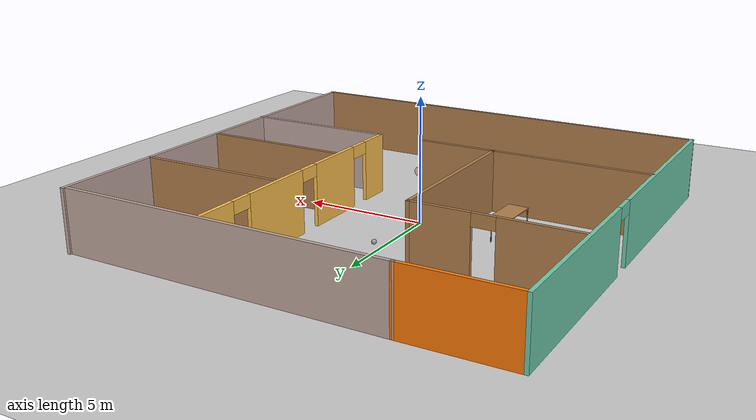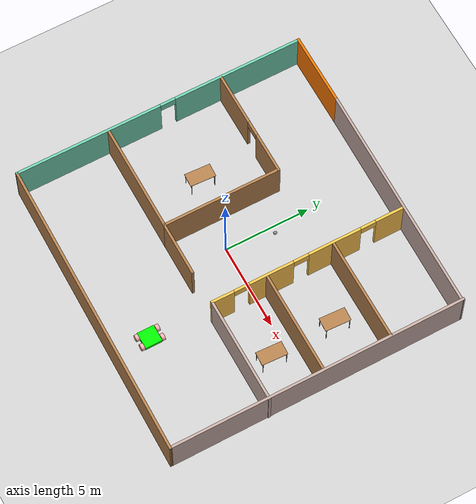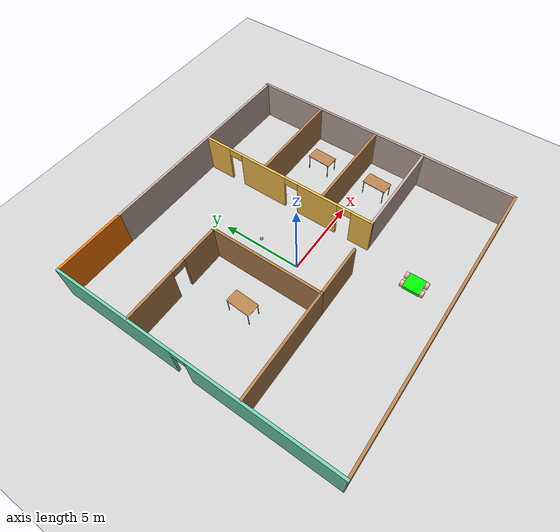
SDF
<sdf version="1.7">
 <world name="default">
  <model name="ground_plane">
   <static>1</static>
   <link name="link">
    <collision name="collision">
     <geometry><plane><normal>0 0 1</normal><size>100 100</size></plane></geometry>
     <surface><friction><ode><mu>100</mu><mu2>50</mu2></ode></friction></surface>
    </collision>
    <visual name="visual">
     <cast_shadows>0</cast_shadows>
     <geometry><plane><normal>0 0 1</normal><size>100 100</size></plane></geometry>
     <material>
      <script><uri>file://media/materials/scripts/gazebo.material</uri><name>Gazebo/Grey</name></script>
     </material>
    </visual>
   </link>
  </model>
  <model name="small-office-with-textures">
   <pose>0.616 0.33819 0 0 -0 0</pose>
   <link name="Wall_31">
    <collision name="Wall_31_Collision">
     <geometry><box><size>13.5 0.15 2.5</size></box></geometry>
     <pose>0 0 1.25 0 -0 0</pose>
    </collision>
    <visual name="Wall_31_Visual">
     <pose>0 0 1.25 0 -0 0</pose>
     <geometry><box><size>13.5 0.15 2.5</size></box></geometry>
     <material>
      <script><uri>file://media/materials/scripts/gazebo.material</uri><name>Gazebo/Grey</name></script>
      <ambient>0.760784 0.662745 0.627451 1</ambient>
     </material>
     <meta><layer>0</layer></meta>
    </visual>
    <pose>2.10617 8.54991 0 0 0 -0.0106</pose>
   </link>
   <link name="Wall_32">
    <collision name="Wall_32_Collision">
     <geometry><box><size>17.25 0.15 2.5</size></box></geometry>
     <pose>0 0 1.25 0 -0 0</pose>
    </collision>
    <visual name="Wall_32_Visual">
     <pose>0 0 1.25 0 -0 0</pose>
     <geometry><box><size>17.25 0.15 2.5</size></box></geometry>
     <material>
      <script><uri>file://media/materials/scripts/gazebo.material</uri><name>Gazebo/Grey</name></script>
      <ambient>0.760784 0.662745 0.627451 1</ambient>
     </material>
     <meta><layer>0</layer></meta>
    </visual>
    <pose>8.78117 -9.4e-05 0 0 0 -1.5708</pose>
   </link>
   <link name="Wall_33">
    <collision name="Wall_33_Collision">
     <geometry><box><size>17.75 0.15 2.5</size></box></geometry>
     <pose>0 0 1.25 0 -0 0</pose>
    </collision>
    <visual name="Wall_33_Visual">
     <pose>0 0 1.25 0 -0 0</pose>
     <geometry><box><size>17.75 0.15 2.5</size></box></geometry>
     <material>
      <script><uri>file://media/materials/scripts/gazebo.material</uri><name>Gazebo/Wood</name></script>
      <ambient>1 1 1 1</ambient>
     </material>
     <meta><layer>0</layer></meta>
    </visual>
    <pose>-0.018829 -8.55009 0 0 -0 3.13355</pose>
   </link>
   <link name="Wall_34">
    <pose>-8.81883 0.070663 0 0 -0 1.5708</pose>
    <visual name="Wall_34_Visual_0">
     <pose>-4.29565 0 1.25 0 -0 0</pose>
     <geometry><box><size>8.65869 0.15 2.5</size></box></geometry>
     <material>
      <script><uri>file://media/materials/scripts/gazebo.material</uri><name>Gazebo/Grey</name></script>
      <ambient>0.435294 0.796078 0.67451 1</ambient>
     </material>
     <meta><layer>0</layer></meta>
    </visual>
    <collision name="Wall_34_Collision_0">
     <geometry><box><size>8.65869 0.15 2.5</size></box></geometry>
     <pose>-4.29565 0 1.25 0 -0 0</pose>
    </collision>
    <visual name="Wall_34_Visual_1">
     <pose>4.77935 0 1.25 0 -0 0</pose>
     <geometry><box><size>7.6913 0.15 2.5</size></box></geometry>
     <material>
      <script><uri>file://media/materials/scripts/gazebo.material</uri><name>Gazebo/Grey</name></script>
      <ambient>0.435294 0.796078 0.67451 1</ambient>
     </material>
     <meta><layer>0</layer></meta>
    </visual>
    <collision name="Wall_34_Collision_1">
     <geometry><box><size>7.6913 0.15 2.5</size></box></geometry>
     <pose>4.77935 0 1.25 0 -0 0</pose>
    </collision>
    <visual name="Wall_34_Visual_2">
     <pose>0.483695 0 2.25 0 -0 0</pose>
     <geometry><box><size>0.9 0.15 0.5</size></box></geometry>
     <material>
      <script><uri>file://media/materials/scripts/gazebo.material</uri><name>Gazebo/Grey</name></script>
      <ambient>0.435294 0.796078 0.67451 1</ambient>
     </material>
     <meta><layer>0</layer></meta>
    </visual>
    <collision name="Wall_34_Collision_2">
     <geometry><box><size>0.9 0.15 0.5</size></box></geometry>
     <pose>0.483695 0 2.25 0 -0 0</pose>
    </collision>
   </link>
   <link name="Wall_35">
    <collision name="Wall_35_Collision">
     <geometry><box><size>4.4 0.15 2.5</size></box></geometry>
     <pose>0 0 1.25 0 -0 0</pose>
    </collision>
    <visual name="Wall_35_Visual">
     <pose>0 0 1.25 0 -0 0</pose>
     <geometry><box><size>4.4 0.15 2.5</size></box></geometry>
     <material>
      <script><uri>file://media/materials/scripts/gazebo.material</uri><name>Gazebo/Grey</name></script>
      <ambient>0.996078 0.47451 0.0196078 1</ambient>
     </material>
     <meta><layer>0</layer></meta>
    </visual>
    <pose>-6.69383 8.62066 0 0 -0 0</pose>
   </link>
   <link name="Wall_37">
    <pose>-5.5685 3.80918 0 0 -0 0</pose>
    <visual name="Wall_37_Visual_0">
     <pose>-1.66857 0 1.25 0 -0 0</pose>
     <geometry><box><size>3.16285 0.15 2.5</size></box></geometry>
     <material>
      <script><uri>file://media/materials/scripts/gazebo.material</uri><name>Gazebo/Wood</name></script>
      <ambient>1 1 1 1</ambient>
     </material>
     <meta><layer>0</layer></meta>
    </visual>
    <collision name="Wall_37_Collision_0">
     <geometry><box><size>3.16285 0.15 2.5</size></box></geometry>
     <pose>-1.66857 0 1.25 0 -0 0</pose>
    </collision>
    <visual name="Wall_37_Visual_1">
     <pose>2.03143 0 1.25 0 -0 0</pose>
     <geometry><box><size>2.43715 0.15 2.5</size></box></geometry>
     <material>
      <script><uri>file://media/materials/scripts/gazebo.material</uri><name>Gazebo/Wood</name></script>
      <ambient>1 1 1 1</ambient>
     </material>
     <meta><layer>0</layer></meta>
    </visual>
    <collision name="Wall_37_Collision_1">
     <geometry><box><size>2.43715 0.15 2.5</size></box></geometry>
     <pose>2.03143 0 1.25 0 -0 0</pose>
    </collision>
    <visual name="Wall_37_Visual_2">
     <pose>0.362853 0 2.25 0 -0 0</pose>
     <geometry><box><size>0.9 0.15 0.5</size></box></geometry>
     <material>
      <script><uri>file://media/materials/scripts/gazebo.material</uri><name>Gazebo/Wood</name></script>
      <ambient>1 1 1 1</ambient>
     </material>
     <meta><layer>0</layer></meta>
    </visual>
    <collision name="Wall_37_Collision_2">
     <geometry><box><size>0.9 0.15 0.5</size></box></geometry>
     <pose>0.362853 0 2.25 0 -0 0</pose>
    </collision>
   </link>
   <link name="Wall_38">
    <collision name="Wall_38_Collision">
     <geometry><box><size>7 0.15 2.5</size></box></geometry>
     <pose>0 0 1.25 0 -0 0</pose>
    </collision>
    <visual name="Wall_38_Visual">
     <pose>0 0 1.25 0 -0 0</pose>
     <geometry><box><size>7 0.15 2.5</size></box></geometry>
     <material>
      <script><uri>file://media/materials/scripts/gazebo.material</uri><name>Gazebo/Wood</name></script>
      <ambient>0.760784 0.662745 0.627451 1</ambient>
     </material>
     <meta><layer>0</layer></meta>
    </visual>
    <pose>-2.3935 0.384183 0 0 0 -1.5708</pose>
   </link>
   <link name="Wall_39">
    <collision name="Wall_39_Collision">
     <geometry><box><size>6.5 0.15 2.5</size></box></geometry>
     <pose>0 0 1.25 0 -0 0</pose>
    </collision>
    <visual name="Wall_39_Visual">
     <pose>0 0 1.25 0 -0 0</pose>
     <geometry><box><size>6.5 0.15 2.5</size></box></geometry>
     <material>
      <script><uri>file://media/materials/scripts/gazebo.material</uri><name>Gazebo/Wood</name></script>
      <ambient>0.760784 0.662745 0.627451 1</ambient>
     </material>
     <meta><layer>0</layer></meta>
    </visual>
    <pose>-5.5685 -3.04082 0 0 -0 3.14159</pose>
   </link>
   <link name="Wall_44">
    <collision name="Wall_44_Collision">
     <geometry><box><size>3.25 0.15 2.5</size></box></geometry>
     <pose>0 0 1.25 0 -0 0</pose>
    </collision>
    <visual name="Wall_44_Visual">
     <pose>0 0 1.25 0 -0 0</pose>
     <geometry><box><size>3.25 0.15 2.5</size></box></geometry>
     <material>
      <script><uri>file://media/materials/scripts/gazebo.material</uri><name>Gazebo/Wood</name></script>
      <ambient>0.760784 0.662745 0.627451 1</ambient>
     </material>
     <meta><layer>0</layer></meta>
    </visual>
    <pose>-0.843495 -3.04082 0 0 -0 0</pose>
   </link>
   <link name="Wall_46">
    <pose>2.71915 2.73339 0 0 0 -1.5708</pose>
    <visual name="Wall_46_Visual_0">
     <pose>-4.91152 0 1.25 0 -0 0</pose>
     <geometry><box><size>1.67695 0.15 2.5</size></box></geometry>
     <material>
      <script><uri>file://media/materials/scripts/gazebo.material</uri><name>Gazebo/Grey</name></script>
      <ambient>1 0.764706 0.305882 1</ambient>
     </material>
     <meta><layer>0</layer></meta>
    </visual>
    <collision name="Wall_46_Collision_0">
     <geometry><box><size>1.67695 0.15 2.5</size></box></geometry>
     <pose>-4.91152 0 1.25 0 -0 0</pose>
    </collision>
    <visual name="Wall_46_Visual_1">
     <pose>-1.60647 0 1.25 0 -0 0</pose>
     <geometry><box><size>3.13315 0.15 2.5</size></box></geometry>
     <material>
      <script><uri>file://media/materials/scripts/gazebo.material</uri><name>Gazebo/Grey</name></script>
      <ambient>1 0.764706 0.305882 1</ambient>
     </material>
     <meta><layer>0</layer></meta>
    </visual>
    <collision name="Wall_46_Collision_1">
     <geometry><box><size>3.13315 0.15 2.5</size></box></geometry>
     <pose>-1.60647 0 1.25 0 -0 0</pose>
    </collision>
    <visual name="Wall_46_Visual_2">
     <pose>2.17903 0 1.25 0 -0 0</pose>
     <geometry><box><size>2.63785 0.15 2.5</size></box></geometry>
     <material>
      <script><uri>file://media/materials/scripts/gazebo.material</uri><name>Gazebo/Grey</name></script>
      <ambient>1 0.764706 0.305882 1</ambient>
     </material>
     <meta><layer>0</layer></meta>
    </visual>
    <collision name="Wall_46_Collision_2">
     <geometry><box><size>2.63785 0.15 2.5</size></box></geometry>
     <pose>2.17903 0 1.25 0 -0 0</pose>
    </collision>
    <visual name="Wall_46_Visual_3">
     <pose>5.07398 0 1.25 0 -0 0</pose>
     <geometry><box><size>1.35204 0.15 2.5</size></box></geometry>
     <material>
      <script><uri>file://media/materials/scripts/gazebo.material</uri><name>Gazebo/Grey</name></script>
      <ambient>1 0.764706 0.305882 1</ambient>
     </material>
     <meta><layer>0</layer></meta>
    </visual>
    <collision name="Wall_46_Collision_3">
     <geometry><box><size>1.35204 0.15 2.5</size></box></geometry>
     <pose>5.07398 0 1.25 0 -0 0</pose>
    </collision>
    <visual name="Wall_46_Visual_4">
     <pose>-3.62304 0 2.25 0 -0 0</pose>
     <geometry><box><size>0.9 0.15 0.5</size></box></geometry>
     <material>
      <script><uri>file://media/materials/scripts/gazebo.material</uri><name>Gazebo/Grey</name></script>
      <ambient>1 0.764706 0.305882 1</ambient>
     </material>
     <meta><layer>0</layer></meta>
    </visual>
    <collision name="Wall_46_Collision_4">
     <geometry><box><size>0.9 0.15 0.5</size></box></geometry>
     <pose>-3.62304 0 2.25 0 -0 0</pose>
    </collision>
    <visual name="Wall_46_Visual_5">
     <pose>0.410107 0 2.25 0 -0 0</pose>
     <geometry><box><size>0.9 0.15 0.5</size></box></geometry>
     <material>
      <script><uri>file://media/materials/scripts/gazebo.material</uri><name>Gazebo/Grey</name></script>
      <ambient>1 0.764706 0.305882 1</ambient>
     </material>
     <meta><layer>0</layer></meta>
    </visual>
    <collision name="Wall_46_Collision_5">
     <geometry><box><size>0.9 0.15 0.5</size></box></geometry>
     <pose>0.410107 0 2.25 0 -0 0</pose>
    </collision>
    <visual name="Wall_46_Visual_6">
     <pose>3.94796 0 2.25 0 -0 0</pose>
     <geometry><box><size>0.9 0.15 0.5</size></box></geometry>
     <material>
      <script><uri>file://media/materials/scripts/gazebo.material</uri><name>Gazebo/Grey</name></script>
      <ambient>1 0.764706 0.305882 1</ambient>
     </material>
     <meta><layer>0</layer></meta>
    </visual>
    <collision name="Wall_46_Collision_6">
     <geometry><box><size>0.9 0.15 0.5</size></box></geometry>
     <pose>3.94796 0 2.25 0 -0 0</pose>
    </collision>
   </link>
   <link name="Wall_47">
    <collision name="Wall_47_Collision">
     <geometry><box><size>6.25 0.15 2.5</size></box></geometry>
     <pose>0 0 1.25 0 -0 0</pose>
    </collision>
    <visual name="Wall_47_Visual">
     <pose>0 0 1.25 0 -0 0</pose>
     <geometry><box><size>6.25 0.15 2.5</size></box></geometry>
     <material>
      <script><uri>file://media/materials/scripts/gazebo.material</uri><name>Gazebo/Grey</name></script>
      <ambient>0.760784 0.662745 0.627451 1</ambient>
     </material>
     <meta><layer>0</layer></meta>
    </visual>
    <pose>5.76915 -2.94161 0 0 -0 0</pose>
   </link>
   <link name="Wall_49">
    <collision name="Wall_49_Collision">
     <geometry><box><size>6 0.15 2.5</size></box></geometry>
     <pose>0 0 1.25 0 -0 0</pose>
    </collision>
    <visual name="Wall_49_Visual">
     <pose>0 0 1.25 0 -0 0</pose>
     <geometry><box><size>6 0.15 2.5</size></box></geometry>
     <material>
      <script><uri>file://media/materials/scripts/gazebo.material</uri><name>Gazebo/Wood</name></script>
      <ambient>0.760784 0.662745 0.627451 1</ambient>
     </material>
     <meta><layer>0</layer></meta>
    </visual>
    <pose>5.78566 4.23373 0 0 -0 0</pose>
   </link>
   <link name="Wall_51">
    <collision name="Wall_51_Collision">
     <geometry><box><size>6 0.15 2.5</size></box></geometry>
     <pose>0 0 1.25 0 -0 0</pose>
    </collision>
    <visual name="Wall_51_Visual">
     <pose>0 0 1.25 0 -0 0</pose>
     <geometry><box><size>6 0.15 2.5</size></box></geometry>
     <material>
      <script><uri>file://media/materials/scripts/gazebo.material</uri><name>Gazebo/Wood</name></script>
      <ambient>0.760784 0.662745 0.627451 1</ambient>
     </material>
     <meta><layer>0</layer></meta>
    </visual>
    <pose>5.78566 0.27133 0 0 -0 0</pose>
   </link>
   <static>1</static>
  </model>
  <model name="table_0">
   <static>1</static>
   <link name="link">
    <collision name="surface">
     <pose>0 0 1 0 -0 0</pose>
     <geometry><box><size>1.5 0.8 0.03</size></box></geometry>
     <surface><friction><ode><mu>0.6</mu><mu2>0.6</mu2></ode></friction></surface>
    </collision>
    <visual name="visual1">
     <pose>0 0 1 0 -0 0</pose>
     <geometry><box><size>1.5 0.8 0.03</size></box></geometry>
     <material>
      <script><uri>file://media/materials/scripts/gazebo.material</uri><name>Gazebo/Wood</name></script>
     </material>
    </visual>
    <collision name="front_left_leg">
     <pose>0.68 0.38 0.5 0 -0 0</pose>
     <geometry><cylinder><radius>0.02</radius><length>1</length></cylinder></geometry>
    </collision>
    <visual name="front_left_leg">
     <pose>0.68 0.38 0.5 0 -0 0</pose>
     <geometry><cylinder><radius>0.02</radius><length>1</length></cylinder></geometry>
     <material>
      <script><uri>file://media/materials/scripts/gazebo.material</uri><name>Gazebo/Grey</name></script>
     </material>
    </visual>
    <collision name="front_right_leg">
     <pose>0.68 -0.38 0.5 0 -0 0</pose>
     <geometry><cylinder><radius>0.02</radius><length>1</length></cylinder></geometry>
    </collision>
    <visual name="front_right_leg">
     <pose>0.68 -0.38 0.5 0 -0 0</pose>
     <geometry><cylinder><radius>0.02</radius><length>1</length></cylinder></geometry>
     <material>
      <script><uri>file://media/materials/scripts/gazebo.material</uri><name>Gazebo/Grey</name></script>
     </material>
    </visual>
    <collision name="back_right_leg">
     <pose>-0.68 -0.38 0.5 0 -0 0</pose>
     <geometry><cylinder><radius>0.02</radius><length>1</length></cylinder></geometry>
    </collision>
    <visual name="back_right_leg">
     <pose>-0.68 -0.38 0.5 0 -0 0</pose>
     <geometry><cylinder><radius>0.02</radius><length>1</length></cylinder></geometry>
     <material>
      <script><uri>file://media/materials/scripts/gazebo.material</uri><name>Gazebo/Grey</name></script>
     </material>
    </visual>
    <collision name="back_left_leg">
     <pose>-0.68 0.38 0.5 0 -0 0</pose>
     <geometry><cylinder><radius>0.02</radius><length>1</length></cylinder></geometry>
    </collision>
    <visual name="back_left_leg">
     <pose>-0.68 0.38 0.5 0 -0 0</pose>
     <geometry><cylinder><radius>0.02</radius><length>1</length></cylinder></geometry>
     <material>
      <script><uri>file://media/materials/scripts/gazebo.material</uri><name>Gazebo/Grey</name></script>
     </material>
    </visual>
   </link>
   <pose>6.91504 -1.05286 0.346112 0.000206 -0.004127 -1.62077</pose>
  </model>
  <model name="table_0_clone">
   <static>1</static>
   <link name="link">
    <collision name="surface">
     <pose>0 0 1 0 -0 0</pose>
     <geometry><box><size>1.5 0.8 0.03</size></box></geometry>
     <surface><friction><ode><mu>0.6</mu><mu2>0.6</mu2></ode></friction></surface>
    </collision>
    <visual name="visual1">
     <pose>0 0 1 0 -0 0</pose>
     <geometry><box><size>1.5 0.8 0.03</size></box></geometry>
     <material>
      <script><uri>file://media/materials/scripts/gazebo.material</uri><name>Gazebo/Wood</name></script>
     </material>
    </visual>
    <collision name="front_left_leg">
     <pose>0.68 0.38 0.5 0 -0 0</pose>
     <geometry><cylinder><radius>0.02</radius><length>1</length></cylinder></geometry>
    </collision>
    <visual name="front_left_leg">
     <pose>0.68 0.38 0.5 0 -0 0</pose>
     <geometry><cylinder><radius>0.02</radius><length>1</length></cylinder></geometry>
     <material>
      <script><uri>file://media/materials/scripts/gazebo.material</uri><name>Gazebo/Grey</name></script>
     </material>
    </visual>
    <collision name="front_right_leg">
     <pose>0.68 -0.38 0.5 0 -0 0</pose>
     <geometry><cylinder><radius>0.02</radius><length>1</length></cylinder></geometry>
    </collision>
    <visual name="front_right_leg">
     <pose>0.68 -0.38 0.5 0 -0 0</pose>
     <geometry><cylinder><radius>0.02</radius><length>1</length></cylinder></geometry>
     <material>
      <script><uri>file://media/materials/scripts/gazebo.material</uri><name>Gazebo/Grey</name></script>
     </material>
    </visual>
    <collision name="back_right_leg">
     <pose>-0.68 -0.38 0.5 0 -0 0</pose>
     <geometry><cylinder><radius>0.02</radius><length>1</length></cylinder></geometry>
    </collision>
    <visual name="back_right_leg">
     <pose>-0.68 -0.38 0.5 0 -0 0</pose>
     <geometry><cylinder><radius>0.02</radius><length>1</length></cylinder></geometry>
     <material>
      <script><uri>file://media/materials/scripts/gazebo.material</uri><name>Gazebo/Grey</name></script>
     </material>
    </visual>
    <collision name="back_left_leg">
     <pose>-0.68 0.38 0.5 0 -0 0</pose>
     <geometry><cylinder><radius>0.02</radius><length>1</length></cylinder></geometry>
    </collision>
    <visual name="back_left_leg">
     <pose>-0.68 0.38 0.5 0 -0 0</pose>
     <geometry><cylinder><radius>0.02</radius><length>1</length></cylinder></geometry>
     <material>
      <script><uri>file://media/materials/scripts/gazebo.material</uri><name>Gazebo/Grey</name></script>
     </material>
    </visual>
   </link>
   <pose>6.80691 2.77332 0.346112 0.000206 -0.004127 -1.62077</pose>
  </model>
  <model name="table_0_clone_1">
   <static>1</static>
   <link name="link">
    <collision name="surface">
     <pose>0 0 1 0 -0 0</pose>
     <geometry><box><size>1.5 0.8 0.03</size></box></geometry>
     <surface><friction><ode><mu>0.6</mu><mu2>0.6</mu2></ode></friction></surface>
    </collision>
    <visual name="visual1">
     <pose>0 0 1 0 -0 0</pose>
     <geometry><box><size>1.5 0.8 0.03</size></box></geometry>
     <material>
      <script><uri>file://media/materials/scripts/gazebo.material</uri><name>Gazebo/Wood</name></script>
     </material>
    </visual>
    <collision name="front_left_leg">
     <pose>0.68 0.38 0.5 0 -0 0</pose>
     <geometry><cylinder><radius>0.02</radius><length>1</length></cylinder></geometry>
    </collision>
    <visual name="front_left_leg">
     <pose>0.68 0.38 0.5 0 -0 0</pose>
     <geometry><cylinder><radius>0.02</radius><length>1</length></cylinder></geometry>
     <material>
      <script><uri>file://media/materials/scripts/gazebo.material</uri><name>Gazebo/Grey</name></script>
     </material>
    </visual>
    <collision name="front_right_leg">
     <pose>0.68 -0.38 0.5 0 -0 0</pose>
     <geometry><cylinder><radius>0.02</radius><length>1</length></cylinder></geometry>
    </collision>
    <visual name="front_right_leg">
     <pose>0.68 -0.38 0.5 0 -0 0</pose>
     <geometry><cylinder><radius>0.02</radius><length>1</length></cylinder></geometry>
     <material>
      <script><uri>file://media/materials/scripts/gazebo.material</uri><name>Gazebo/Grey</name></script>
     </material>
    </visual>
    <collision name="back_right_leg">
     <pose>-0.68 -0.38 0.5 0 -0 0</pose>
     <geometry><cylinder><radius>0.02</radius><length>1</length></cylinder></geometry>
    </collision>
    <visual name="back_right_leg">
     <pose>-0.68 -0.38 0.5 0 -0 0</pose>
     <geometry><cylinder><radius>0.02</radius><length>1</length></cylinder></geometry>
     <material>
      <script><uri>file://media/materials/scripts/gazebo.material</uri><name>Gazebo/Grey</name></script>
     </material>
    </visual>
    <collision name="back_left_leg">
     <pose>-0.68 0.38 0.5 0 -0 0</pose>
     <geometry><cylinder><radius>0.02</radius><length>1</length></cylinder></geometry>
    </collision>
    <visual name="back_left_leg">
     <pose>-0.68 0.38 0.5 0 -0 0</pose>
     <geometry><cylinder><radius>0.02</radius><length>1</length></cylinder></geometry>
     <material>
      <script><uri>file://media/materials/scripts/gazebo.material</uri><name>Gazebo/Grey</name></script>
     </material>
    </visual>
   </link>
   <pose>-3.98054 0.594288 0.346112 0.000206 -0.004127 -1.62077</pose>
  </model>
  <model name="AWDRobot_clone_0">
   <link name="link_0">
    <inertial>
     <mass>1</mass>
     <inertia>
      <ixx>0.166667</ixx>
      <ixy>0</ixy>
      <ixz>0</ixz>
      <iyy>0.166667</iyy>
      <iyz>0</iyz>
      <izz>0.166667</izz>
     </inertia>
    </inertial>
    <visual name="visual">
     <geometry><box><size>1 1 0.2</size></box></geometry>
     <material>
      <lighting>1</lighting>
      <script><uri>file://media/materials/scripts/gazebo.material</uri><name>Gazebo/Grey</name></script>
      <shader type="pixel"><normal_map>__default__</normal_map></shader>
      <ambient>0 1 0 1</ambient>
      <diffuse>0 1 0 1</diffuse>
      <specular>0.01 0.01 0.01 1</specular>
      <emissive>0 0 0 1</emissive>
     </material>
    </visual>
    <collision name="collision">
     <geometry><box><size>1 1 0.2</size></box></geometry>
     <surface>
      <friction>
       <ode><mu>1</mu><mu2>1</mu2><fdir1>0 0 0</fdir1><slip1>0</slip1><slip2>0</slip2></ode>
       <torsional>
        <coefficient>1</coefficient>
        <patch_radius>0</patch_radius>
        <surface_radius>0</surface_radius>
        <use_patch_radius>1</use_patch_radius>
        <ode><slip>0</slip></ode>
       </torsional>
      </friction>
      <bounce><restitution_coefficient>0</restitution_coefficient><threshold>1e+06</threshold></bounce>
      <contact>
       <collide_without_contact>0</collide_without_contact>
       <collide_without_contact_bitmask>1</collide_without_contact_bitmask>
       <collide_bitmask>1</collide_bitmask>
       <ode>
        <soft_cfm>0</soft_cfm>
        <soft_erp>0.2</soft_erp>
        <kp>1e+13</kp>
        <kd>1</kd>
        <max_vel>0.01</max_vel>
        <min_depth>0</min_depth>
       </ode>
       <bullet>
        <split_impulse>1</split_impulse>
        <split_impulse_penetration_threshold>-0.01</split_impulse_penetration_threshold>
        <soft_cfm>0</soft_cfm>
        <soft_erp>0.2</soft_erp>
        <kp>1e+13</kp>
        <kd>1</kd>
       </bullet>
      </contact>
     </surface>
    </collision>
   </link>
   <link name="link_1">
    <pose>0.3 -0.600019 0 1.5707 -0 0</pose>
    <inertial>
     <mass>1</mass>
     <inertia><ixx>0.145833</ixx><ixy>0</ixy><ixz>0</ixz><iyy>0.145833</iyy><iyz>0</iyz><izz>0.125</izz></inertia>
    </inertial>
    <visual name="visual">
     <geometry><cylinder><radius>0.2</radius><length>0.2</length></cylinder></geometry>
     <material>
      <lighting>1</lighting>
      <script><uri>file://media/materials/scripts/gazebo.material</uri><name>Gazebo/Grey</name></script>
      <shader type="pixel"><normal_map>__default__</normal_map></shader>
      <ambient>1 0.3 0.3 1</ambient>
      <diffuse>1 0.7 0.7 1</diffuse>
      <specular>0.01 0.01 0.01 1</specular>
      <emissive>0 0 0 1</emissive>
     </material>
    </visual>
    <collision name="collision">
     <geometry><cylinder><radius>0.2</radius><length>0.2</length></cylinder></geometry>
     <surface>
      <friction>
       <ode><mu>1</mu><mu2>1</mu2><fdir1>0 0 0</fdir1><slip1>0</slip1><slip2>0</slip2></ode>
       <torsional>
        <coefficient>1</coefficient>
        <patch_radius>0</patch_radius>
        <surface_radius>0</surface_radius>
        <use_patch_radius>1</use_patch_radius>
        <ode><slip>0</slip></ode>
       </torsional>
      </friction>
      <bounce><restitution_coefficient>0</restitution_coefficient><threshold>1e+06</threshold></bounce>
      <contact>
       <collide_without_contact>0</collide_without_contact>
       <collide_without_contact_bitmask>1</collide_without_contact_bitmask>
       <collide_bitmask>1</collide_bitmask>
       <ode>
        <soft_cfm>0</soft_cfm>
        <soft_erp>0.2</soft_erp>
        <kp>1e+13</kp>
        <kd>1</kd>
        <max_vel>0.01</max_vel>
        <min_depth>0</min_depth>
       </ode>
       <bullet>
        <split_impulse>1</split_impulse>
        <split_impulse_penetration_threshold>-0.01</split_impulse_penetration_threshold>
        <soft_cfm>0</soft_cfm>
        <soft_erp>0.2</soft_erp>
        <kp>1e+13</kp>
        <kd>1</kd>
       </bullet>
      </contact>
     </surface>
    </collision>
   </link>
   <link name="link_1_clone">
    <pose>-0.3 -0.600019 0 1.5707 -0 0</pose>
    <inertial>
     <mass>1</mass>
     <inertia><ixx>0.145833</ixx><ixy>0</ixy><ixz>0</ixz><iyy>0.145833</iyy><iyz>0</iyz><izz>0.125</izz></inertia>
    </inertial>
    <visual name="visual">
     <geometry><cylinder><radius>0.2</radius><length>0.2</length></cylinder></geometry>
     <material>
      <lighting>1</lighting>
      <script><uri>file://media/materials/scripts/gazebo.material</uri><name>Gazebo/Grey</name></script>
      <shader type="pixel"><normal_map>__default__</normal_map></shader>
      <ambient>1 0.3 0.3 1</ambient>
      <diffuse>1 0.7 0.7 1</diffuse>
      <specular>0.01 0.01 0.01 1</specular>
      <emissive>0 0 0 1</emissive>
     </material>
    </visual>
    <collision name="collision">
     <geometry><cylinder><radius>0.2</radius><length>0.2</length></cylinder></geometry>
     <surface>
      <friction>
       <ode><mu>1</mu><mu2>1</mu2><fdir1>0 0 0</fdir1><slip1>0</slip1><slip2>0</slip2></ode>
       <torsional>
        <coefficient>1</coefficient>
        <patch_radius>0</patch_radius>
        <surface_radius>0</surface_radius>
        <use_patch_radius>1</use_patch_radius>
        <ode><slip>0</slip></ode>
       </torsional>
      </friction>
      <bounce><restitution_coefficient>0</restitution_coefficient><threshold>1e+06</threshold></bounce>
      <contact>
       <collide_without_contact>0</collide_without_contact>
       <collide_without_contact_bitmask>1</collide_without_contact_bitmask>
       <collide_bitmask>1</collide_bitmask>
       <ode>
        <soft_cfm>0</soft_cfm>
        <soft_erp>0.2</soft_erp>
        <kp>1e+13</kp>
        <kd>1</kd>
        <max_vel>0.01</max_vel>
        <min_depth>0</min_depth>
       </ode>
       <bullet>
        <split_impulse>1</split_impulse>
        <split_impulse_penetration_threshold>-0.01</split_impulse_penetration_threshold>
        <soft_cfm>0</soft_cfm>
        <soft_erp>0.2</soft_erp>
        <kp>1e+13</kp>
        <kd>1</kd>
       </bullet>
      </contact>
     </surface>
    </collision>
   </link>
   <link name="link_1_clone_0">
    <pose>-0.3 0.600019 0 1.5707 -0 0</pose>
    <inertial>
     <mass>1</mass>
     <inertia><ixx>0.145833</ixx><ixy>0</ixy><ixz>0</ixz><iyy>0.145833</iyy><iyz>0</iyz><izz>0.125</izz></inertia>
    </inertial>
    <visual name="visual">
     <geometry><cylinder><radius>0.2</radius><length>0.2</length></cylinder></geometry>
     <material>
      <lighting>1</lighting>
      <script><uri>file://media/materials/scripts/gazebo.material</uri><name>Gazebo/Grey</name></script>
      <shader type="pixel"><normal_map>__default__</normal_map></shader>
      <ambient>1 0.3 0.3 1</ambient>
      <diffuse>1 0.7 0.7 1</diffuse>
      <specular>0.01 0.01 0.01 1</specular>
      <emissive>0 0 0 1</emissive>
     </material>
    </visual>
    <collision name="collision">
     <geometry><cylinder><radius>0.2</radius><length>0.2</length></cylinder></geometry>
     <surface>
      <friction>
       <ode><mu>1</mu><mu2>1</mu2><fdir1>0 0 0</fdir1><slip1>0</slip1><slip2>0</slip2></ode>
       <torsional>
        <coefficient>1</coefficient>
        <patch_radius>0</patch_radius>
        <surface_radius>0</surface_radius>
        <use_patch_radius>1</use_patch_radius>
        <ode><slip>0</slip></ode>
       </torsional>
      </friction>
      <bounce><restitution_coefficient>0</restitution_coefficient><threshold>1e+06</threshold></bounce>
      <contact>
       <collide_without_contact>0</collide_without_contact>
       <collide_without_contact_bitmask>1</collide_without_contact_bitmask>
       <collide_bitmask>1</collide_bitmask>
       <ode>
        <soft_cfm>0</soft_cfm>
        <soft_erp>0.2</soft_erp>
        <kp>1e+13</kp>
        <kd>1</kd>
        <max_vel>0.01</max_vel>
        <min_depth>0</min_depth>
       </ode>
       <bullet>
        <split_impulse>1</split_impulse>
        <split_impulse_penetration_threshold>-0.01</split_impulse_penetration_threshold>
        <soft_cfm>0</soft_cfm>
        <soft_erp>0.2</soft_erp>
        <kp>1e+13</kp>
        <kd>1</kd>
       </bullet>
      </contact>
     </surface>
    </collision>
   </link>
   <link name="link_1_clone_1">
    <pose>0.3 0.600019 0 1.5707 -0 0</pose>
    <inertial>
     <mass>1</mass>
     <inertia><ixx>0.145833</ixx><ixy>0</ixy><ixz>0</ixz><iyy>0.145833</iyy><iyz>0</iyz><izz>0.125</izz></inertia>
    </inertial>
    <visual name="visual">
     <geometry><cylinder><radius>0.2</radius><length>0.2</length></cylinder></geometry>
     <material>
      <lighting>1</lighting>
      <script><uri>file://media/materials/scripts/gazebo.material</uri><name>Gazebo/Grey</name></script>
      <shader type="pixel"><normal_map>__default__</normal_map></shader>
      <ambient>1 0.3 0.3 1</ambient>
      <diffuse>1 0.7 0.7 1</diffuse>
      <specular>0.01 0.01 0.01 1</specular>
      <emissive>0 0 0 1</emissive>
     </material>
    </visual>
    <collision name="collision">
     <geometry><cylinder><radius>0.2</radius><length>0.2</length></cylinder></geometry>
     <surface>
      <friction>
       <ode><mu>1</mu><mu2>1</mu2><fdir1>0 0 0</fdir1><slip1>0</slip1><slip2>0</slip2></ode>
       <torsional>
        <coefficient>1</coefficient>
        <patch_radius>0</patch_radius>
        <surface_radius>0</surface_radius>
        <use_patch_radius>1</use_patch_radius>
        <ode><slip>0</slip></ode>
       </torsional>
      </friction>
      <bounce><restitution_coefficient>0</restitution_coefficient><threshold>1e+06</threshold></bounce>
      <contact>
       <collide_without_contact>0</collide_without_contact>
       <collide_without_contact_bitmask>1</collide_without_contact_bitmask>
       <collide_bitmask>1</collide_bitmask>
       <ode>
        <soft_cfm>0</soft_cfm>
        <soft_erp>0.2</soft_erp>
        <kp>1e+13</kp>
        <kd>1</kd>
        <max_vel>0.01</max_vel>
        <min_depth>0</min_depth>
       </ode>
       <bullet>
        <split_impulse>1</split_impulse>
        <split_impulse_penetration_threshold>-0.01</split_impulse_penetration_threshold>
        <soft_cfm>0</soft_cfm>
        <soft_erp>0.2</soft_erp>
        <kp>1e+13</kp>
        <kd>1</kd>
       </bullet>
      </contact>
     </surface>
    </collision>
   </link>
   <joint name="link_0_JOINT_1" type="revolute">
    <parent>link_0</parent>
    <child>link_1_clone</child>
    <axis>
     <xyz>0 0 1</xyz>
     <limit>
      <lower>-1.79769e+308</lower>
      <upper>1.79769e+308</upper>
      <effort>-1</effort>
      <velocity>-1</velocity>
     </limit>
     <dynamics>
      <spring_reference>0</spring_reference>
      <spring_stiffness>0</spring_stiffness>
      <damping>0</damping>
     </dynamics>
    </axis>
    <physics>
     <ode><limit><cfm>0</cfm><erp>0.2</erp></limit><suspension><cfm>0</cfm><erp>0.2</erp></suspension></ode>
    </physics>
   </joint>
   <joint name="link_0_JOINT_2" type="revolute">
    <parent>link_0</parent>
    <child>link_1</child>
    <axis>
     <xyz>0 0 1</xyz>
     <limit>
      <lower>-1.79769e+308</lower>
      <upper>1.79769e+308</upper>
      <effort>-1</effort>
      <velocity>-1</velocity>
     </limit>
     <dynamics>
      <spring_reference>0</spring_reference>
      <spring_stiffness>0</spring_stiffness>
      <damping>0</damping>
     </dynamics>
    </axis>
    <physics>
     <ode><limit><cfm>0</cfm><erp>0.2</erp></limit><suspension><cfm>0</cfm><erp>0.2</erp></suspension></ode>
    </physics>
   </joint>
   <joint name="link_0_JOINT_3" type="revolute">
    <parent>link_0</parent>
    <child>link_1_clone_0</child>
    <axis>
     <xyz>0 0 1</xyz>
     <limit>
      <lower>-1.79769e+308</lower>
      <upper>1.79769e+308</upper>
      <effort>-1</effort>
      <velocity>-1</velocity>
     </limit>
     <dynamics>
      <spring_reference>0</spring_reference>
      <spring_stiffness>0</spring_stiffness>
      <damping>0</damping>
     </dynamics>
    </axis>
    <physics>
     <ode><limit><cfm>0</cfm><erp>0.2</erp></limit><suspension><cfm>0</cfm><erp>0.2</erp></suspension></ode>
    </physics>
   </joint>
   <joint name="link_0_JOINT_4" type="revolute">
    <parent>link_0</parent>
    <child>link_1_clone_1</child>
    <axis>
     <xyz>0 0 1</xyz>
     <limit>
      <lower>-1.79769e+308</lower>
      <upper>1.79769e+308</upper>
      <effort>-1</effort>
      <velocity>-1</velocity>
     </limit>
     <dynamics>
      <spring_reference>0</spring_reference>
      <spring_stiffness>0</spring_stiffness>
      <damping>0</damping>
     </dynamics>
    </axis>
    <physics>
     <ode><limit><cfm>0</cfm><erp>0.2</erp></limit><suspension><cfm>0</cfm><erp>0.2</erp></suspension></ode>
    </physics>
   </joint>
   <static>0</static>
   <pose>2.64262 -5.97544 0.20001 0 1e-06 0.000435</pose>
  </model>
  <model name="my_ball">
   <link name="link_0">
    <inertial>
     <mass>1</mass>
     <inertia><ixx>0.1</ixx><ixy>0</ixy><ixz>0</ixz><iyy>0.1</iyy><iyz>0</iyz><izz>0.1</izz></inertia>
    </inertial>
    <visual name="visual">
     <geometry><sphere><radius>0.1</radius></sphere></geometry>
     <material>
      <lighting>1</lighting>
      <script><uri>file://media/materials/scripts/gazebo.material</uri><name>Gazebo/Grey</name></script>
      <shader type="pixel"><normal_map>__default__</normal_map></shader>
      <ambient>1 1 1 1</ambient>
      <diffuse>1 1 1 1</diffuse>
      <specular>1 1 1 1</specular>
      <emissive>1 1 1 1</emissive>
     </material>
    </visual>
    <collision name="collision">
     <geometry><sphere><radius>0.1</radius></sphere></geometry>
     <surface>
      <friction>
       <ode><mu>1</mu><mu2>1</mu2><fdir1>0 0 0</fdir1><slip1>0</slip1><slip2>0</slip2></ode>
       <torsional>
        <coefficient>1</coefficient>
        <patch_radius>0</patch_radius>
        <surface_radius>0</surface_radius>
        <use_patch_radius>1</use_patch_radius>
        <ode><slip>0</slip></ode>
       </torsional>
      </friction>
      <bounce><restitution_coefficient>0</restitution_coefficient><threshold>1e+06</threshold></bounce>
      <contact>
       <collide_without_contact>0</collide_without_contact>
       <collide_without_contact_bitmask>1</collide_without_contact_bitmask>
       <collide_bitmask>1</collide_bitmask>
       <ode>
        <soft_cfm>0</soft_cfm>
        <soft_erp>0.2</soft_erp>
        <kp>1e+13</kp>
        <kd>1</kd>
        <max_vel>0.01</max_vel>
        <min_depth>0</min_depth>
       </ode>
       <bullet>
        <split_impulse>1</split_impulse>
        <split_impulse_penetration_threshold>-0.01</split_impulse_penetration_threshold>
        <soft_cfm>0</soft_cfm>
        <soft_erp>0.2</soft_erp>
        <kp>1e+13</kp>
        <kd>1</kd>
       </bullet>
      </contact>
     </surface>
    </collision>
   </link>
   <static>0</static>
   <pose>0.414516 2.77549 0.1 0 -0 0</pose>
  </model>
 </world>
</sdf>
